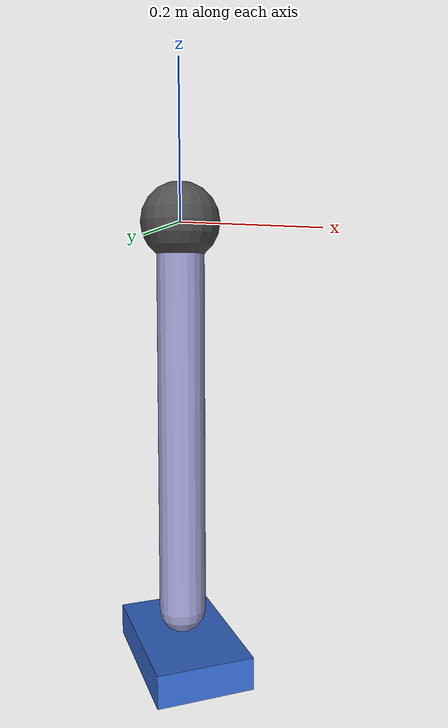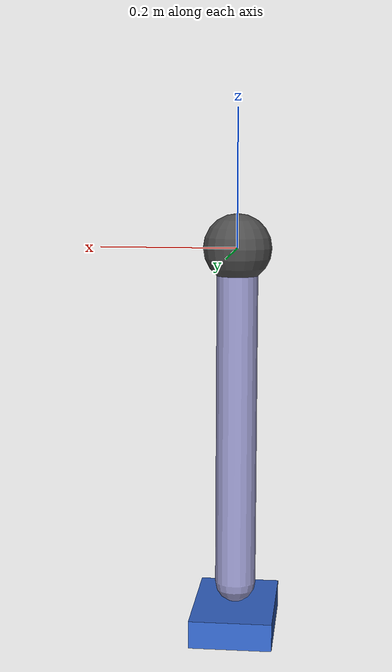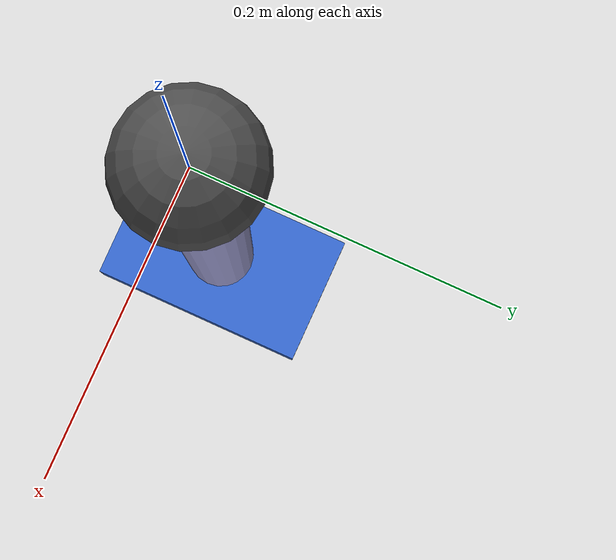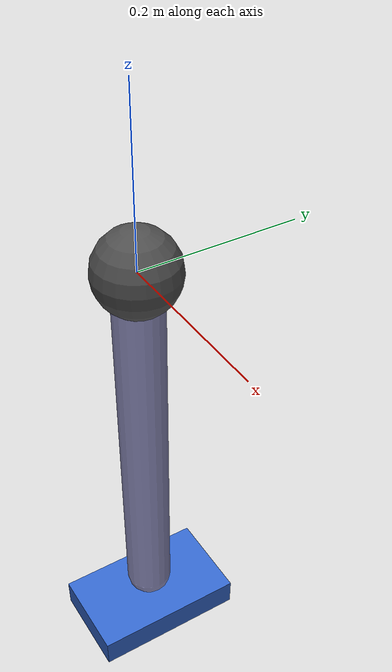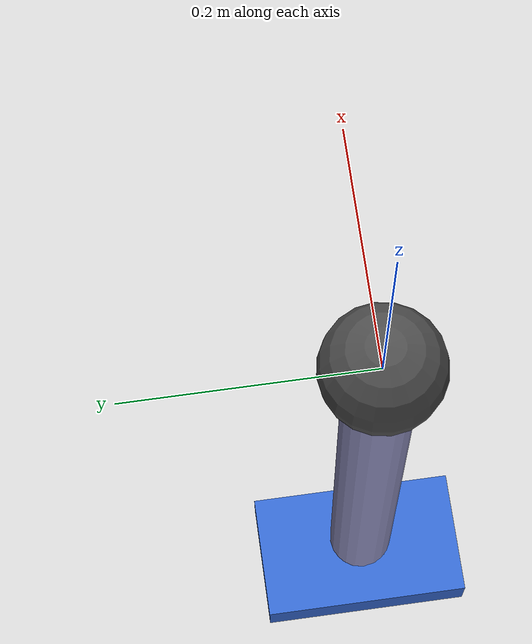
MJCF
<mujoco model="knee_rom_trainer">
    <!-- 使用弧度；惯量从几何自动算 -->
    <compiler angle="radian" inertiafromgeom="true" />
    <option timestep="0.00005" gravity="0 0 -9.81" integrator="RK4" />

    <default>
        <!-- 单轴铰链关节，带被动刚度与阻尼 -->
        <joint type="hinge" limited="true"
            damping="0.8" stiffness="10.0"
            armature="0.0" />
        <!-- 小腿杆：0.5m, 质量 4kg, capsule 几何 -->
        <geom type="capsule" size="0.03 0.25"
            mass="4.0"
            rgba="0.6 0.6 0.8 1" />
    </default>

    <!-- 只是记录参数，方便和课上表格对齐，并不直接参与计算 -->
    <custom>
        <!-- 下腿 + 脚质量 -->
        <numeric name="m_leg" data="4.0" />
        <!-- COM 距膝关节 -->
        <numeric name="r_com" data="0.25" />
        <!-- 等效惯量 I ≈ m r^2 -->
        <numeric name="I_knee" data="0.25" />
        <!-- 传动效率 / 传动比 / 电机常数 -->
        <numeric name="eta" data="0.85" />
        <numeric name="G" data="50.0" />
        <numeric name="k_t" data="0.05" />
        <!-- 最大电流 -->
        <numeric name="i_max" data="2.0" />
    </custom>

    <worldbody>
        <!-- 固定大腿/机架 -->
        <body name="base" pos="0 0 0">
            <geom type="sphere" size="0.05" rgba="0.3 0.3 0.3 1" />

            <!-- 小腿 body，从膝关节开始向下伸出 0.5m -->
            <body name="leg" pos="0 0 0">
                <!-- 膝关节绕 y 轴转动 -->
                <!-- 关节角度近似表示膝屈曲角；range 15°~160° -->
                <joint name="knee"
                    axis="0 1 0"
                    range="-1.57 1.57"
                    stiffness="10.0"
                    damping="0.8" />

                <!-- 小腿杆 -->
                <geom name="leg_geom"
                    fromto="0 0 0   0 0 -0.5"
                    size="0.03" />

                <!-- 末端脚托 -->
                <geom name="foot_pad"
                    type="box"
                    pos="0 0 -0.55"
                    size="0.06 0.1 0.02"
                    rgba="0.2 0.4 0.8 1" />
            </body>
        </body>
    </worldbody>

    <!-- 电机：控制量是电流 i，扭矩 = gear * i = η G k_t i -->
    <!-- 课上参数：eta=0.85, G=50, k_t=0.05 → gear ≈ 2.125 N·m/A -->
    <actuator>
        <motor name="knee_motor"
            joint="knee"
            gear="2.125" />
    </actuator>

    <!-- 传感器：关节状态 + 电机扭矩 -->
    <sensor>
        <jointpos name="knee_pos" joint="knee" />
        <jointvel name="knee_vel" joint="knee" />
        <actuatorfrc name="motor_torque" actuator="knee_motor" />
    </sensor>
</mujoco>
